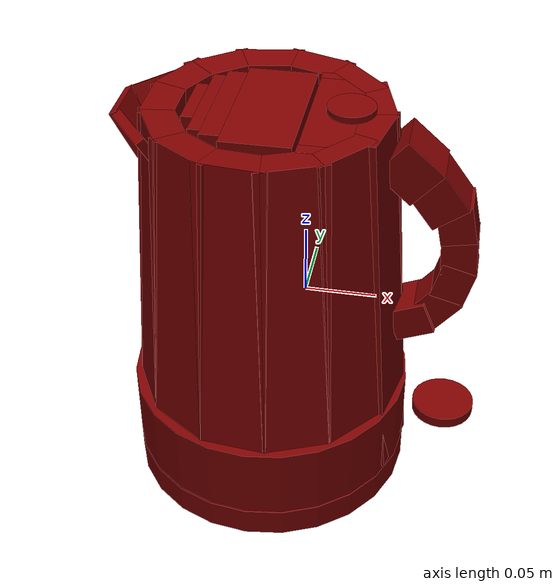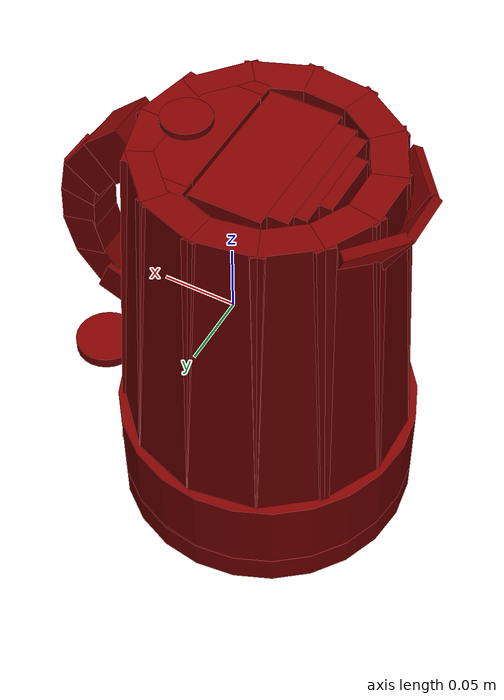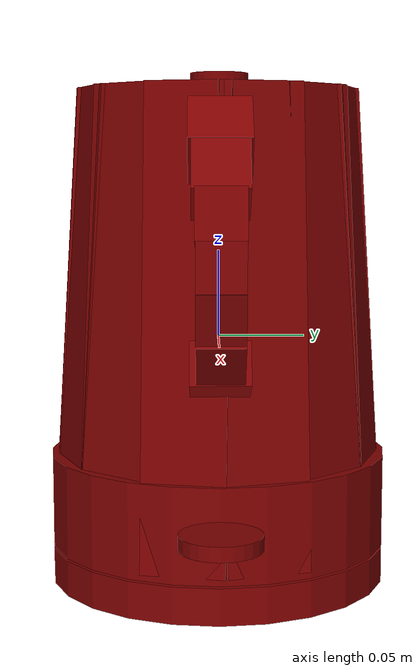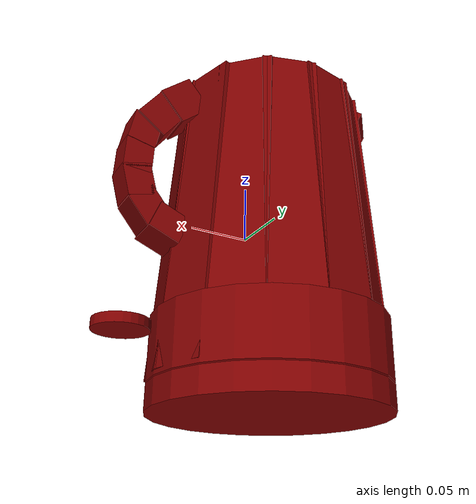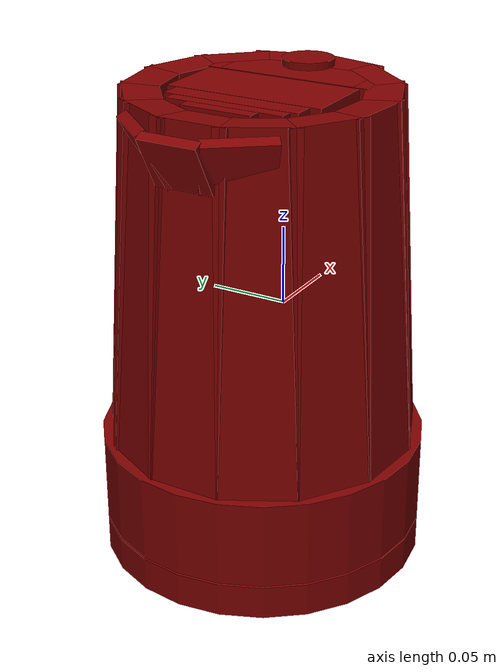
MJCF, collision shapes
<?xml version='1.0' encoding='UTF-8'?>
<mujoco model="model">
  <option timestep="0.002" gravity="0.0 0.0 -9.81"/>
  <compiler angle="radian"/>
  <asset>
    <mesh file="visuals/button_lid.obj" name="button_lid_vis"/>
    <mesh file="visuals/Body001.obj" name="Body001_vis"/>
    <mesh file="visuals/kettle_main.obj" name="kettle_main_vis"/>
    <mesh file="visuals/kettle_main_Clear.obj" name="kettle_main_Clear_vis"/>
    <mesh file="visuals/lid.obj" name="lid_vis"/>
    <mesh file="visuals/switch.obj" name="switch_vis"/>
    <texture file="visuals/T_BC001.png" name="Body001_material" type="2d"/>
    <material name="Body001_material" rgba="1 1 1 1.0" texture="Body001_material" shininess="0.4472135901451111" specular="0.3103448502657381"/>
    <texture file="visuals/T_BC001.png" name="kettle_main_material" type="2d"/>
    <material name="kettle_main_material" rgba="1 1 1 1.0" texture="kettle_main_material" shininess="0.4472135901451111" specular="0.3103448502657381"/>
    <texture file="visuals/T_BC001.png" name="button_lid_material" type="2d"/>
    <material name="button_lid_material" rgba="1 1 1 1.0" texture="button_lid_material" shininess="0.4472135901451111" specular="0.3103448502657381"/>
    <material name="kettle_main_Clear_material" rgba="0.23014912009239197 0.23014912009239197 0.23014912009239197 0.800000011920929" shininess="0.4472135901451111" specular="0.3103448502657381"/>
    <texture file="visuals/T_BC001.png" name="lid_material" type="2d"/>
    <material name="lid_material" rgba="1 1 1 1.0" texture="lid_material" shininess="0.4472135901451111" specular="0.3103448502657381"/>
    <texture file="visuals/T_BC001.png" name="switch_material" type="2d"/>
    <material name="switch_material" rgba="1 1 1 1.0" texture="switch_material" shininess="0.4472135901451111" specular="0.3103448502657381"/>
  </asset>
  <default>
    <default class="visual">
      <geom conaffinity="0" contype="0" group="1" type="mesh"/>
    </default>
    <default class="collision">
      <geom group="0" rgba="0.5 0 0 0.5" density="1.0" solref="0.004 1" solimp="0.998 0.998 0.001"/>
    </default>
    <default class="spawn">
      <geom group="0" rgba="1 1 1 0.5" contype="0" conaffinity="0"/>
      <site group="0" rgba="1 1 1 0.5"/>
    </default>
    <default class="region">
      <geom group="1" conaffinity="0" contype="0" rgba="0 1 0 0" mass="0"/>
    </default>
  </default>
  <worldbody>
    <body>
      <body name="object">
        <geom mesh="Body001_vis" type="mesh" solimp="0.998 0.998 0.001" solref="0.001 1" friction="0.95 0.3 0.1" class="visual" material="Body001_material"/>
        <geom type="cylinder" pos="-0.02584514 0.00000002 -0.13956037" size="0.10144243389368057 0.010628825053572655" quat="1.0 0.0 0.0 0.0" class="collision"/>
        <body name="kettle_main">
          <geom mesh="kettle_main_vis" type="mesh" solimp="0.998 0.998 0.001" solref="0.001 1" friction="0.95 0.3 0.1" class="visual" material="kettle_main_material"/>
          <geom class="collision" type="box" pos="0.06940982 0.00000005 0.11226816" size="0.01648845709860325 0.017016258090734482 0.016007598489522934" quat="0.9347493052482605 -1.1423335354357987e-14 0.3553078770637512 4.7738687669607316e-08" name="handle_1"/>
          <geom class="collision" type="box" pos="0.08930384 0.00000005 0.09188691" size="0.015378513373434544 0.01523592695593834 0.014528315514326096" quat="0.89105224609375 -1.1071457539277817e-15 0.4539007842540741 6.098557747691302e-08" name="handle_2"/>
          <geom class="collision" type="box" pos="0.10223571 0.00000005 0.07338095" size="0.013809528201818466 0.013338612392544746 0.012176656164228916" quat="0.7718415260314941 -7.451211956471804e-13 0.6358149647712708 8.54271036132559e-08" name="handle_main"/>
          <geom class="collision" type="box" pos="0.10574738 0.00000004 0.04787641" size="0.013809528201818466 0.012982138432562351 0.012176656164228916" quat="0.7224703431129456 3.445154318076904e-13 0.6914019584655762 9.290005920092881e-08" name="handle_3"/>
          <geom class="collision" type="box" pos="0.10357969 0.00000004 0.02573491" size="0.013809527270495892 0.012982138432562351 0.012176656164228916" quat="0.6056534051895142 1.2278685826341146e-13 0.7957285642623901 1.0691387331007718e-07" name="handle_4"/>
          <geom class="collision" type="box" pos="0.09336053 0.00000004 0.00498694" size="0.013809528201818466 0.012982138432562351 0.012176656164228916" quat="0.42706602811813354 1.042267129807567e-13 0.904220461845398 1.2149008910000703e-07" name="handle_5"/>
          <geom class="collision" type="box" pos="0.07663828 0.00000004 -0.00801926" size="0.013809528201818466 0.0162392295897007 0.012176656164228916" quat="0.19089354574680328 1.3784031424948773e-13 0.9816107749938965 1.3188774516947888e-07" name="handle_6"/>
          <geom type="box" pos="-0.11570189 0.00000005 0.12386610" size="0.017446836456656456 0.018521806225180626 0.0031074355356395245" quat="0.8592998385429382 7.504623821246587e-15 0.5114721655845642 6.872084412634649e-08" class="collision"/>
          <geom type="box" pos="-0.10325309 0.02768468 0.12386610" size="0.01796913705766201 0.019870679825544357 0.0034132993314415216" quat="0.8059025406837463 0.17748861014842987 0.4796890318393707 -0.29819002747535706" class="collision"/>
          <geom type="box" pos="-0.10232409 -0.02935680 0.12386610" size="0.017780296504497528 0.02099858969449997 0.0033049522899091244" quat="0.8133487701416016 -0.16501648724079132 0.4841212034225464 0.27723637223243713" class="collision"/>
          <geom type="box" pos="0.01528925 0.04682238 0.13526984" size="0.0137313362210989 0.00648150872439146 0.007989110425114632" quat="1.0 0.0 0.0 0.0" class="collision"/>
          <geom type="box" pos="0.01528925 -0.04636294 0.13526984" size="0.0137313362210989 0.006481506396085024 0.007989110425114632" quat="1.0 0.0 0.0 0.0" class="collision"/>
          <geom type="box" pos="0.01797759 0.00086106 0.13526984" size="0.016161944717168808 0.04444905370473862 0.008001398295164108" quat="1.0 0.0 0.0 0.0" class="collision"/>
          <geom type="cylinder" pos="-0.02584514 0.00000002 -0.10030791" size="0.10144243389368057 0.027324313297867775" quat="1.0 0.0 0.0 0.0" class="collision"/>
          <body name="button_lid">
            <joint axis="0.0 0.0 -1.0" pos="0.02858005 -0.00012869 0.14388996" limited="true" name="button_lid_joint" range="0.0 0.003" type="slide" damping="1" frictionloss="1" armature=".01" stiffness="0.05" springref="-3"/>
            <geom mesh="button_lid_vis" type="mesh" solimp="0.998 0.998 0.001" solref="0.001 1" friction="0.95 0.3 0.1" class="visual" material="button_lid_material"/>
            <geom class="collision" type="cylinder" pos="0.02884047 0.00000006 0.14730716" size="0.01602855511009693 0.0022176748607307673" quat="1.0 0.0 0.0 0.0" name="button_lid_main"/>
          </body>
          <body name="kettle_main_Clear">
            <geom mesh="kettle_main_Clear_vis" type="mesh" solimp="0.998 0.998 0.001" solref="0.001 1" friction="0.95 0.3 0.1" class="visual" material="kettle_main_Clear_material"/>
            <geom type="box" pos="-0.10348098 0.00000002 0.00949775" size="0.010966354049742222 0.02403128147125244 0.13442876935005188" quat="0.99945467710495 0.0 0.03302085027098656 0.0" class="collision"/>
            <geom type="box" pos="-0.09438358 -0.03646644 0.00949777" size="0.010966352187097073 0.02403128147125244 0.13442876935005188" quat="0.969733715057373 -0.00799283105880022 0.03203893080353737 0.24192188680171967" class="collision"/>
            <geom type="box" pos="-0.06893617 -0.06457929 0.00949775" size="0.010966353118419647 0.02403128147125244 0.13442876935005188" quat="0.8812901973724365 -0.015575189143419266 0.029116835445165634 0.47142040729522705" class="collision"/>
            <geom type="box" pos="-0.03355310 -0.07725224 0.00949777" size="0.010966354049742222 0.024031279608607292 0.13442876935005188" quat="0.740973949432373 -0.022159896790981293 0.02448096312582493 0.6707214117050171" class="collision"/>
            <geom type="box" pos="0.00311048 -0.07203398 0.00949775" size="0.010966353118419647 0.02403128147125244 0.13442876935005188" quat="0.5596200227737427 -0.027359191328287125 0.01848922111093998 0.8280912041664124" class="collision"/>
            <geom type="box" pos="0.03355267 -0.04999223 0.00949775" size="0.010966353118419647 0.02403128147125244 0.13442875444889069" quat="0.3425358533859253 -0.03102090023458004 0.011316978372633457 0.9389243125915527" class="collision"/>
            <geom type="box" pos="0.05245763 -0.01666636 0.00949777" size="0.010966352187097073 0.024031275883316994 0.13442876935005188" quat="0.10286465287208557 -0.032845523208379745 0.003398534609004855 0.9941471219062805" class="collision"/>
            <geom type="box" pos="0.05063417 0.02204608 0.00949775" size="0.010966353118419647 0.024031275883316994 0.13442875444889069" quat="0.14083148539066315 0.0326913557946682 0.004652907606214285 -0.9894827604293823" class="collision"/>
            <geom type="box" pos="0.03041213 0.05350183 0.00949775" size="0.010966353118419647 0.02403128333389759 0.13442876935005188" quat="0.3708568811416626 0.030663464218378067 0.012252697721123695 -0.9281027913093567" class="collision"/>
            <geom type="box" pos="-0.00131052 0.07365717 0.00949777" size="0.010966354981064796 0.02403128333389759 0.13442876935005188" quat="0.5844793915748596 0.026785830035805702 0.01931055262684822 -0.810736358165741" class="collision"/>
            <geom type="box" pos="-0.03912415 0.07649179 0.00949777" size="0.010966354049742222 0.024031279608607292 0.13442876935005188" quat="0.7647762298583984 0.021258847787976265 0.025267360731959343 -0.6434492468833923" class="collision"/>
            <geom type="box" pos="-0.07349719 0.06129117 0.00949777" size="0.010966353118419647 0.02403128333389759 0.13442876935005188" quat="0.8977832794189453 0.014510611072182655 0.029661765322089195 -0.4391978979110718" class="collision"/>
            <geom type="box" pos="-0.09498095 0.03532088 0.00949777" size="0.010966354049742222 0.024031277745962143 0.13442876935005188" quat="0.971713125705719 0.007725966162979603 0.032104335725307465 -0.23384450376033783" class="collision"/>
          </body>
          <body name="lid">
            <joint axis="0.0 1.0 0.0" pos="0.00212100 0.00000221 0.14053804" limited="true" name="lid_joint" range="0.0 1.5707963267948966" type="hinge" damping="1" frictionloss="0.1" armature=".01" stiffness="0.05" springref="-6"/>
            <geom mesh="lid_vis" type="mesh" solimp="0.998 0.998 0.001" solref="0.001 1" friction="0.95 0.3 0.1" class="visual" material="lid_material"/>
            <geom class="collision" type="box" pos="-0.02439920 0.00086106 0.13598430" size="0.023561205714941025 0.04989184811711311 0.00756659684702754" quat="1.0 0.0 0.0 0.0" name="lid_main"/>
            <geom class="collision" type="box" pos="-0.05452528 0.00086106 0.13598430" size="0.00690032634884119 0.04304097965359688 0.007482585962861776" quat="1.0 0.0 0.0 0.0" name="lid_1"/>
            <geom class="collision" type="box" pos="-0.06567826 -0.00003201 0.13598430" size="0.004108688794076443 0.03734281659126282 0.007468456868082285" quat="1.0 0.0 0.0 0.0" name="lid_2"/>
            <geom class="collision" type="box" pos="-0.07386478 0.00021606 0.13598430" size="0.004108689725399017 0.022494012489914894 0.007468460593372583" quat="1.0 0.0 0.0 0.0" name="lid_3"/>
          </body>
          <body name="switch">
            <joint axis="0.0 1.0 0.0" pos="0.06210054 0.00008889 -0.09376043" limited="true" name="switch_joint" range="0.0 0.5235987755982988" type="hinge" damping="1" frictionloss="1" armature=".01" stiffness="0.05" springref="-5"/>
            <geom mesh="switch_vis" type="mesh" solimp="0.998 0.998 0.001" solref="0.001 1" friction="0.95 0.3 0.1" class="visual" material="switch_material"/>
            <geom class="collision" type="cylinder" pos="0.10429421 0.00000002 -0.09392612" size="0.022456860169768333 0.004043286200612783" quat="0.9999985098838806 -1.267926458270452e-10 0.001724750967696309 4.243003726145389e-09" name="switch_main"/>
          </body>
        </body>
        <geom class="region" name="reg_main" type="box" pos="-0.004444995 0.0 1.500000000598245e-08" size="0.121929865 0.10045522 0.150142165"/>
      </body>
    </body>
  </worldbody>
  <actuator>
    <motor name="button_lid_joint_actuator" joint="button_lid_joint" gear="0.5"/>
    <motor name="lid_joint_actuator" joint="lid_joint" gear="0.5"/>
    <motor name="switch_joint_actuator" joint="switch_joint" gear="0.5"/>
  </actuator>
</mujoco>
